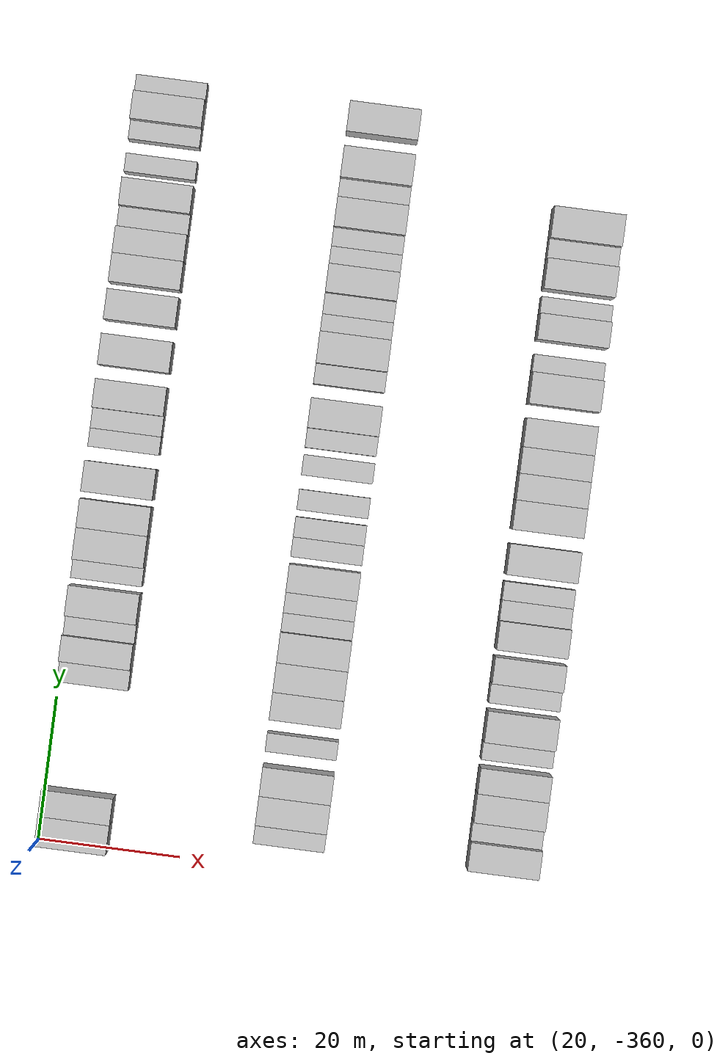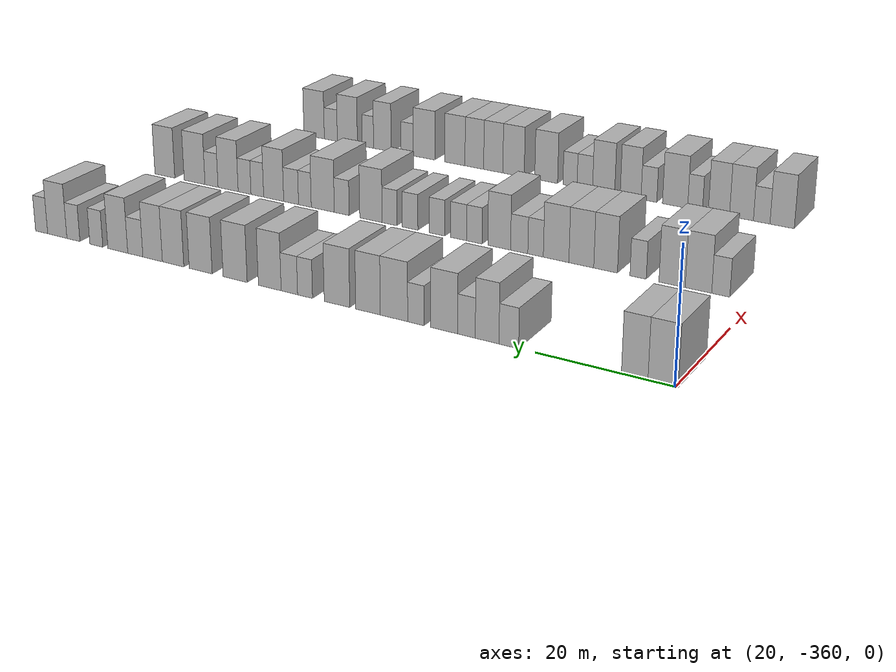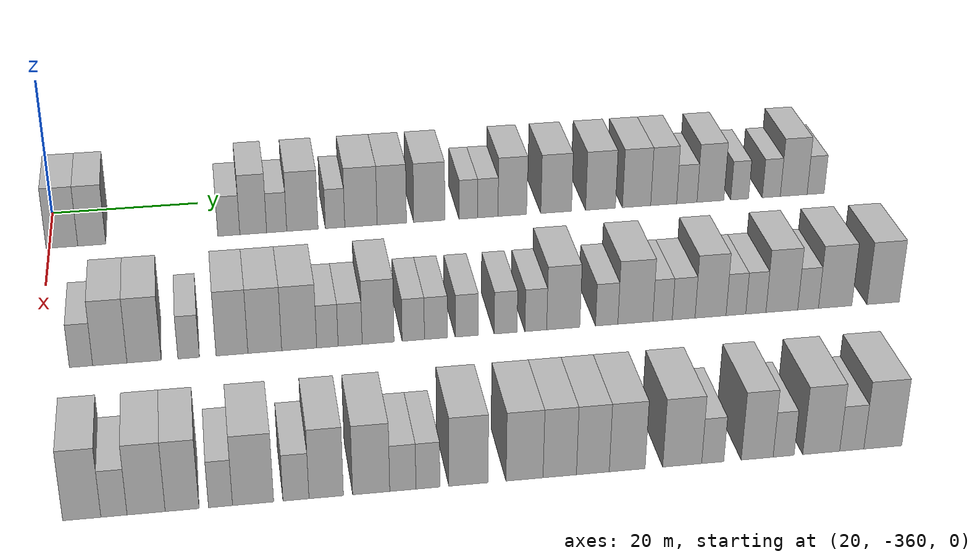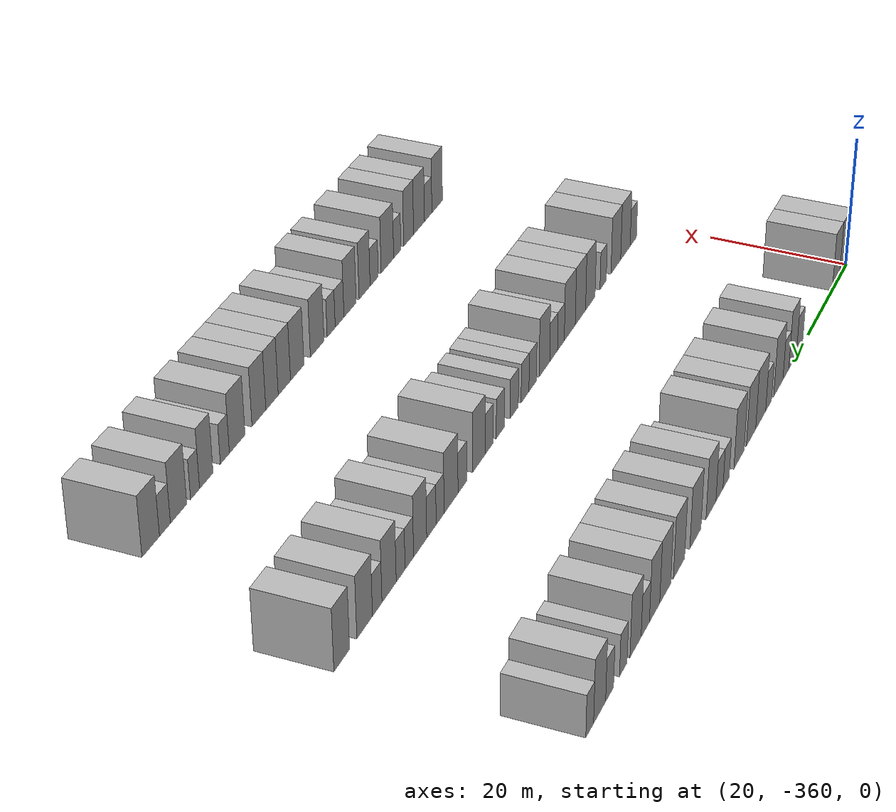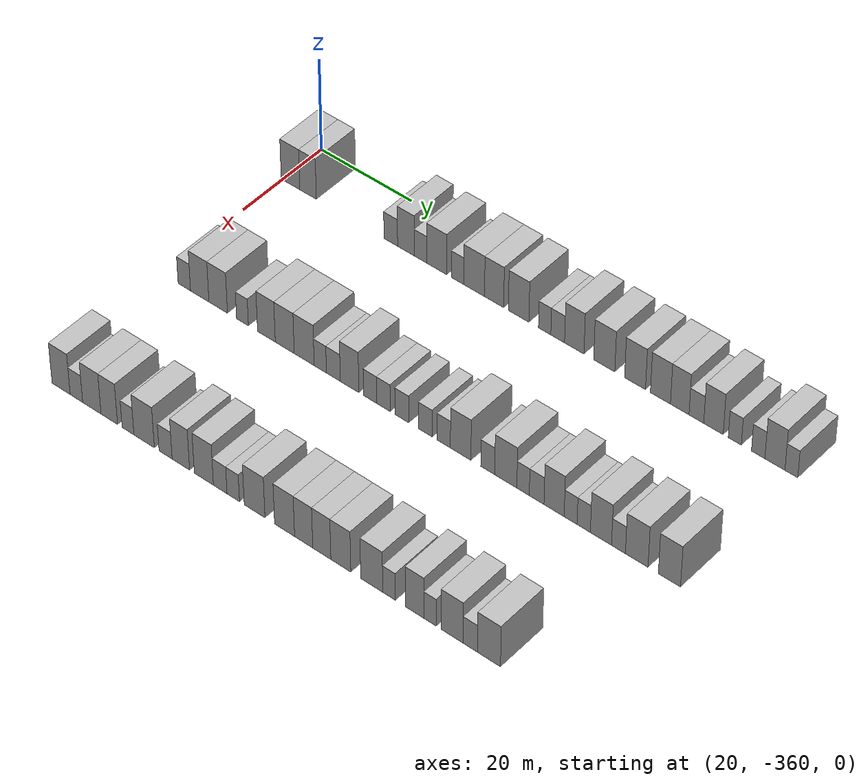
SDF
<sdf version="1.6">
 <world name="default">
  <model name="building_27">
   <static>1</static>
   <pose>25.0000 -358.2777 0 0.000000 0.000000 0.000000</pose>
   <link name="link">
    <pose>0 0 4.50 0 0 0</pose>
    <collision name="collision"><geometry><box><size>10.0000 4.1857 9.0000</size></box></geometry></collision>
    <visual name="visual">
     <cast_shadows>0</cast_shadows>
     <geometry><box><size>10.0000 4.1857 9.0000</size></box></geometry>
     <material>
      <script>
       <uri>model://HANNAS_wall/materials/scripts</uri>
       <uri>model://HANNAS_wall/materials/textures</uri>
       <name>vrc/HANNAS_wall</name>
      </script>
     </material>
    </visual>
   </link>
  </model>
  <model name="building_28">
   <static>1</static>
   <pose>25.0000 -354.3249 0 0.000000 0.000000 0.000000</pose>
   <link name="link">
    <pose>0 0 4.50 0 0 0</pose>
    <collision name="collision"><geometry><box><size>10.0000 3.7199 9.0000</size></box></geometry></collision>
    <visual name="visual">
     <cast_shadows>0</cast_shadows>
     <geometry><box><size>10.0000 3.7199 9.0000</size></box></geometry>
     <material>
      <script>
       <uri>model://HANNAS_wall/materials/scripts</uri>
       <uri>model://HANNAS_wall/materials/textures</uri>
       <name>vrc/HANNAS_wall</name>
      </script>
     </material>
    </visual>
   </link>
  </model>
  <model name="building_29">
   <static>1</static>
   <pose>25.0000 -336.0042 0 0.000000 0.000000 0.000000</pose>
   <link name="link">
    <pose>0 0 3.00 0 0 0</pose>
    <collision name="collision"><geometry><box><size>10.0000 2.9738 6.0000</size></box></geometry></collision>
    <visual name="visual">
     <cast_shadows>0</cast_shadows>
     <geometry><box><size>10.0000 2.9738 6.0000</size></box></geometry>
     <material>
      <script>
       <uri>model://HANNAS_wall/materials/scripts</uri>
       <uri>model://HANNAS_wall/materials/textures</uri>
       <name>vrc/HANNAS_wall</name>
      </script>
     </material>
    </visual>
   </link>
  </model>
  <model name="building_30">
   <static>1</static>
   <pose>25.0000 -332.7003 0 0.000000 0.000000 0.000000</pose>
   <link name="link">
    <pose>0 0 4.50 0 0 0</pose>
    <collision name="collision"><geometry><box><size>10.0000 3.6338 9.0000</size></box></geometry></collision>
    <visual name="visual">
     <cast_shadows>0</cast_shadows>
     <geometry><box><size>10.0000 3.6338 9.0000</size></box></geometry>
     <material>
      <script>
       <uri>model://HANNAS_wall/materials/scripts</uri>
       <uri>model://HANNAS_wall/materials/textures</uri>
       <name>vrc/HANNAS_wall</name>
      </script>
     </material>
    </visual>
   </link>
  </model>
  <model name="building_31">
   <static>1</static>
   <pose>25.0000 -329.5198 0 0.000000 0.000000 0.000000</pose>
   <link name="link">
    <pose>0 0 3.00 0 0 0</pose>
    <collision name="collision"><geometry><box><size>10.0000 2.7272 6.0000</size></box></geometry></collision>
    <visual name="visual">
     <cast_shadows>0</cast_shadows>
     <geometry><box><size>10.0000 2.7272 6.0000</size></box></geometry>
     <material>
      <script>
       <uri>model://HANNAS_wall/materials/scripts</uri>
       <uri>model://HANNAS_wall/materials/textures</uri>
       <name>vrc/HANNAS_wall</name>
      </script>
     </material>
    </visual>
   </link>
  </model>
  <model name="building_32">
   <static>1</static>
   <pose>25.0000 -326.0183 0 0.000000 0.000000 0.000000</pose>
   <link name="link">
    <pose>0 0 4.50 0 0 0</pose>
    <collision name="collision"><geometry><box><size>10.0000 4.2759 9.0000</size></box></geometry></collision>
    <visual name="visual">
     <cast_shadows>0</cast_shadows>
     <geometry><box><size>10.0000 4.2759 9.0000</size></box></geometry>
     <material>
      <script>
       <uri>model://HANNAS_wall/materials/scripts</uri>
       <uri>model://HANNAS_wall/materials/textures</uri>
       <name>vrc/HANNAS_wall</name>
      </script>
     </material>
    </visual>
   </link>
  </model>
  <model name="building_33">
   <static>1</static>
   <pose>25.0000 -321.5558 0 0.000000 0.000000 0.000000</pose>
   <link name="link">
    <pose>0 0 3.00 0 0 0</pose>
    <collision name="collision"><geometry><box><size>10.0000 2.6491 6.0000</size></box></geometry></collision>
    <visual name="visual">
     <cast_shadows>0</cast_shadows>
     <geometry><box><size>10.0000 2.6491 6.0000</size></box></geometry>
     <material>
      <script>
       <uri>model://HANNAS_wall/materials/scripts</uri>
       <uri>model://HANNAS_wall/materials/textures</uri>
       <name>vrc/HANNAS_wall</name>
      </script>
     </material>
    </visual>
   </link>
  </model>
  <model name="building_34">
   <static>1</static>
   <pose>25.0000 -318.0081 0 0.000000 0.000000 0.000000</pose>
   <link name="link">
    <pose>0 0 4.50 0 0 0</pose>
    <collision name="collision"><geometry><box><size>10.0000 4.4463 9.0000</size></box></geometry></collision>
    <visual name="visual">
     <cast_shadows>0</cast_shadows>
     <geometry><box><size>10.0000 4.4463 9.0000</size></box></geometry>
     <material>
      <script>
       <uri>model://HANNAS_wall/materials/scripts</uri>
       <uri>model://HANNAS_wall/materials/textures</uri>
       <name>vrc/HANNAS_wall</name>
      </script>
     </material>
    </visual>
   </link>
  </model>
  <model name="building_35">
   <static>1</static>
   <pose>25.0000 -313.7575 0 0.000000 0.000000 0.000000</pose>
   <link name="link">
    <pose>0 0 4.50 0 0 0</pose>
    <collision name="collision"><geometry><box><size>10.0000 4.0548 9.0000</size></box></geometry></collision>
    <visual name="visual">
     <cast_shadows>0</cast_shadows>
     <geometry><box><size>10.0000 4.0548 9.0000</size></box></geometry>
     <material>
      <script>
       <uri>model://HANNAS_wall/materials/scripts</uri>
       <uri>model://HANNAS_wall/materials/textures</uri>
       <name>vrc/HANNAS_wall</name>
      </script>
     </material>
    </visual>
   </link>
  </model>
  <model name="building_36">
   <static>1</static>
   <pose>25.0000 -308.5774 0 0.000000 0.000000 0.000000</pose>
   <link name="link">
    <pose>0 0 4.50 0 0 0</pose>
    <collision name="collision"><geometry><box><size>10.0000 4.3056 9.0000</size></box></geometry></collision>
    <visual name="visual">
     <cast_shadows>0</cast_shadows>
     <geometry><box><size>10.0000 4.3056 9.0000</size></box></geometry>
     <material>
      <script>
       <uri>model://HANNAS_wall/materials/scripts</uri>
       <uri>model://HANNAS_wall/materials/textures</uri>
       <name>vrc/HANNAS_wall</name>
      </script>
     </material>
    </visual>
   </link>
  </model>
  <model name="building_37">
   <static>1</static>
   <pose>25.0000 -303.1384 0 0.000000 0.000000 0.000000</pose>
   <link name="link">
    <pose>0 0 3.00 0 0 0</pose>
    <collision name="collision"><geometry><box><size>10.0000 2.5723 6.0000</size></box></geometry></collision>
    <visual name="visual">
     <cast_shadows>0</cast_shadows>
     <geometry><box><size>10.0000 2.5723 6.0000</size></box></geometry>
     <material>
      <script>
       <uri>model://HANNAS_wall/materials/scripts</uri>
       <uri>model://HANNAS_wall/materials/textures</uri>
       <name>vrc/HANNAS_wall</name>
      </script>
     </material>
    </visual>
   </link>
  </model>
  <model name="building_38">
   <static>1</static>
   <pose>25.0000 -300.4234 0 0.000000 0.000000 0.000000</pose>
   <link name="link">
    <pose>0 0 3.00 0 0 0</pose>
    <collision name="collision"><geometry><box><size>10.0000 2.8578 6.0000</size></box></geometry></collision>
    <visual name="visual">
     <cast_shadows>0</cast_shadows>
     <geometry><box><size>10.0000 2.8578 6.0000</size></box></geometry>
     <material>
      <script>
       <uri>model://HANNAS_wall/materials/scripts</uri>
       <uri>model://HANNAS_wall/materials/textures</uri>
       <name>vrc/HANNAS_wall</name>
      </script>
     </material>
    </visual>
   </link>
  </model>
  <model name="building_39">
   <static>1</static>
   <pose>25.0000 -296.9860 0 0.000000 0.000000 0.000000</pose>
   <link name="link">
    <pose>0 0 4.50 0 0 0</pose>
    <collision name="collision"><geometry><box><size>10.0000 4.0170 9.0000</size></box></geometry></collision>
    <visual name="visual">
     <cast_shadows>0</cast_shadows>
     <geometry><box><size>10.0000 4.0170 9.0000</size></box></geometry>
     <material>
      <script>
       <uri>model://HANNAS_wall/materials/scripts</uri>
       <uri>model://HANNAS_wall/materials/textures</uri>
       <name>vrc/HANNAS_wall</name>
      </script>
     </material>
    </visual>
   </link>
  </model>
  <model name="building_40">
   <static>1</static>
   <pose>25.0000 -290.8100 0 0.000000 0.000000 0.000000</pose>
   <link name="link">
    <pose>0 0 4.50 0 0 0</pose>
    <collision name="collision"><geometry><box><size>10.0000 4.3349 9.0000</size></box></geometry></collision>
    <visual name="visual">
     <cast_shadows>0</cast_shadows>
     <geometry><box><size>10.0000 4.3349 9.0000</size></box></geometry>
     <material>
      <script>
       <uri>model://HANNAS_wall/materials/scripts</uri>
       <uri>model://HANNAS_wall/materials/textures</uri>
       <name>vrc/HANNAS_wall</name>
      </script>
     </material>
    </visual>
   </link>
  </model>
  <model name="building_41">
   <static>1</static>
   <pose>25.0000 -284.5205 0 0.000000 0.000000 0.000000</pose>
   <link name="link">
    <pose>0 0 4.50 0 0 0</pose>
    <collision name="collision"><geometry><box><size>10.0000 4.2441 9.0000</size></box></geometry></collision>
    <visual name="visual">
     <cast_shadows>0</cast_shadows>
     <geometry><box><size>10.0000 4.2441 9.0000</size></box></geometry>
     <material>
      <script>
       <uri>model://HANNAS_wall/materials/scripts</uri>
       <uri>model://HANNAS_wall/materials/textures</uri>
       <name>vrc/HANNAS_wall</name>
      </script>
     </material>
    </visual>
   </link>
  </model>
  <model name="building_42">
   <static>1</static>
   <pose>25.0000 -279.3800 0 0.000000 0.000000 0.000000</pose>
   <link name="link">
    <pose>0 0 4.50 0 0 0</pose>
    <collision name="collision"><geometry><box><size>10.0000 4.0371 9.0000</size></box></geometry></collision>
    <visual name="visual">
     <cast_shadows>0</cast_shadows>
     <geometry><box><size>10.0000 4.0371 9.0000</size></box></geometry>
     <material>
      <script>
       <uri>model://HANNAS_wall/materials/scripts</uri>
       <uri>model://HANNAS_wall/materials/textures</uri>
       <name>vrc/HANNAS_wall</name>
      </script>
     </material>
    </visual>
   </link>
  </model>
  <model name="building_43">
   <static>1</static>
   <pose>25.0000 -275.5001 0 0.000000 0.000000 0.000000</pose>
   <link name="link">
    <pose>0 0 4.50 0 0 0</pose>
    <collision name="collision"><geometry><box><size>10.0000 3.7226 9.0000</size></box></geometry></collision>
    <visual name="visual">
     <cast_shadows>0</cast_shadows>
     <geometry><box><size>10.0000 3.7226 9.0000</size></box></geometry>
     <material>
      <script>
       <uri>model://HANNAS_wall/materials/scripts</uri>
       <uri>model://HANNAS_wall/materials/textures</uri>
       <name>vrc/HANNAS_wall</name>
      </script>
     </material>
    </visual>
   </link>
  </model>
  <model name="building_44">
   <static>1</static>
   <pose>25.0000 -272.1725 0 0.000000 0.000000 0.000000</pose>
   <link name="link">
    <pose>0 0 3.00 0 0 0</pose>
    <collision name="collision"><geometry><box><size>10.0000 2.9327 6.0000</size></box></geometry></collision>
    <visual name="visual">
     <cast_shadows>0</cast_shadows>
     <geometry><box><size>10.0000 2.9327 6.0000</size></box></geometry>
     <material>
      <script>
       <uri>model://HANNAS_wall/materials/scripts</uri>
       <uri>model://HANNAS_wall/materials/textures</uri>
       <name>vrc/HANNAS_wall</name>
      </script>
     </material>
    </visual>
   </link>
  </model>
  <model name="building_45">
   <static>1</static>
   <pose>25.0000 -268.7681 0 0.000000 0.000000 0.000000</pose>
   <link name="link">
    <pose>0 0 4.50 0 0 0</pose>
    <collision name="collision"><geometry><box><size>10.0000 3.8760 9.0000</size></box></geometry></collision>
    <visual name="visual">
     <cast_shadows>0</cast_shadows>
     <geometry><box><size>10.0000 3.8760 9.0000</size></box></geometry>
     <material>
      <script>
       <uri>model://HANNAS_wall/materials/scripts</uri>
       <uri>model://HANNAS_wall/materials/textures</uri>
       <name>vrc/HANNAS_wall</name>
      </script>
     </material>
    </visual>
   </link>
  </model>
  <model name="building_46">
   <static>1</static>
   <pose>25.0000 -264.5430 0 0.000000 0.000000 0.000000</pose>
   <link name="link">
    <pose>0 0 3.00 0 0 0</pose>
    <collision name="collision"><geometry><box><size>10.0000 2.5741 6.0000</size></box></geometry></collision>
    <visual name="visual">
     <cast_shadows>0</cast_shadows>
     <geometry><box><size>10.0000 2.5741 6.0000</size></box></geometry>
     <material>
      <script>
       <uri>model://HANNAS_wall/materials/scripts</uri>
       <uri>model://HANNAS_wall/materials/textures</uri>
       <name>vrc/HANNAS_wall</name>
      </script>
     </material>
    </visual>
   </link>
  </model>
  <model name="building_47">
   <static>1</static>
   <pose>25.0000 -259.9437 0 0.000000 0.000000 0.000000</pose>
   <link name="link">
    <pose>0 0 3.00 0 0 0</pose>
    <collision name="collision"><geometry><box><size>10.0000 2.6247 6.0000</size></box></geometry></collision>
    <visual name="visual">
     <cast_shadows>0</cast_shadows>
     <geometry><box><size>10.0000 2.6247 6.0000</size></box></geometry>
     <material>
      <script>
       <uri>model://HANNAS_wall/materials/scripts</uri>
       <uri>model://HANNAS_wall/materials/textures</uri>
       <name>vrc/HANNAS_wall</name>
      </script>
     </material>
    </visual>
   </link>
  </model>
  <model name="building_48">
   <static>1</static>
   <pose>25.0000 -256.6727 0 0.000000 0.000000 0.000000</pose>
   <link name="link">
    <pose>0 0 4.50 0 0 0</pose>
    <collision name="collision"><geometry><box><size>10.0000 3.9173 9.0000</size></box></geometry></collision>
    <visual name="visual">
     <cast_shadows>0</cast_shadows>
     <geometry><box><size>10.0000 3.9173 9.0000</size></box></geometry>
     <material>
      <script>
       <uri>model://HANNAS_wall/materials/scripts</uri>
       <uri>model://HANNAS_wall/materials/textures</uri>
       <name>vrc/HANNAS_wall</name>
      </script>
     </material>
    </visual>
   </link>
  </model>
  <model name="building_49">
   <static>1</static>
   <pose>25.0000 -253.4671 0 0.000000 0.000000 0.000000</pose>
   <link name="link">
    <pose>0 0 3.00 0 0 0</pose>
    <collision name="collision"><geometry><box><size>10.0000 2.4939 6.0000</size></box></geometry></collision>
    <visual name="visual">
     <cast_shadows>0</cast_shadows>
     <geometry><box><size>10.0000 2.4939 6.0000</size></box></geometry>
     <material>
      <script>
       <uri>model://HANNAS_wall/materials/scripts</uri>
       <uri>model://HANNAS_wall/materials/textures</uri>
       <name>vrc/HANNAS_wall</name>
      </script>
     </material>
    </visual>
   </link>
  </model>
  <model name="building_251">
   <static>1</static>
   <pose>55.0000 -354.8874 0 0.000000 0.000000 0.000000</pose>
   <link name="link">
    <pose>0 0 3.00 0 0 0</pose>
    <collision name="collision"><geometry><box><size>10.0000 2.7568 6.0000</size></box></geometry></collision>
    <visual name="visual">
     <cast_shadows>0</cast_shadows>
     <geometry><box><size>10.0000 2.7568 6.0000</size></box></geometry>
     <material>
      <script>
       <uri>model://HANNAS_wall/materials/scripts</uri>
       <uri>model://HANNAS_wall/materials/textures</uri>
       <name>vrc/HANNAS_wall</name>
      </script>
     </material>
    </visual>
   </link>
  </model>
  <model name="building_252">
   <static>1</static>
   <pose>55.0000 -351.4671 0 0.000000 0.000000 0.000000</pose>
   <link name="link">
    <pose>0 0 4.50 0 0 0</pose>
    <collision name="collision"><geometry><box><size>10.0000 4.0838 9.0000</size></box></geometry></collision>
    <visual name="visual">
     <cast_shadows>0</cast_shadows>
     <geometry><box><size>10.0000 4.0838 9.0000</size></box></geometry>
     <material>
      <script>
       <uri>model://HANNAS_wall/materials/scripts</uri>
       <uri>model://HANNAS_wall/materials/textures</uri>
       <name>vrc/HANNAS_wall</name>
      </script>
     </material>
    </visual>
   </link>
  </model>
  <model name="building_253">
   <static>1</static>
   <pose>55.0000 -347.3779 0 0.000000 0.000000 0.000000</pose>
   <link name="link">
    <pose>0 0 4.50 0 0 0</pose>
    <collision name="collision"><geometry><box><size>10.0000 4.0946 9.0000</size></box></geometry></collision>
    <visual name="visual">
     <cast_shadows>0</cast_shadows>
     <geometry><box><size>10.0000 4.0946 9.0000</size></box></geometry>
     <material>
      <script>
       <uri>model://HANNAS_wall/materials/scripts</uri>
       <uri>model://HANNAS_wall/materials/textures</uri>
       <name>vrc/HANNAS_wall</name>
      </script>
     </material>
    </visual>
   </link>
  </model>
  <model name="building_254">
   <static>1</static>
   <pose>55.0000 -342.0320 0 0.000000 0.000000 0.000000</pose>
   <link name="link">
    <pose>0 0 3.00 0 0 0</pose>
    <collision name="collision"><geometry><box><size>10.0000 2.5973 6.0000</size></box></geometry></collision>
    <visual name="visual">
     <cast_shadows>0</cast_shadows>
     <geometry><box><size>10.0000 2.5973 6.0000</size></box></geometry>
     <material>
      <script>
       <uri>model://HANNAS_wall/materials/scripts</uri>
       <uri>model://HANNAS_wall/materials/textures</uri>
       <name>vrc/HANNAS_wall</name>
      </script>
     </material>
    </visual>
   </link>
  </model>
  <model name="building_255">
   <static>1</static>
   <pose>55.0000 -336.8066 0 0.000000 0.000000 0.000000</pose>
   <link name="link">
    <pose>0 0 4.50 0 0 0</pose>
    <collision name="collision"><geometry><box><size>10.0000 3.8536 9.0000</size></box></geometry></collision>
    <visual name="visual">
     <cast_shadows>0</cast_shadows>
     <geometry><box><size>10.0000 3.8536 9.0000</size></box></geometry>
     <material>
      <script>
       <uri>model://HANNAS_wall/materials/scripts</uri>
       <uri>model://HANNAS_wall/materials/textures</uri>
       <name>vrc/HANNAS_wall</name>
      </script>
     </material>
    </visual>
   </link>
  </model>
  <model name="building_256">
   <static>1</static>
   <pose>55.0000 -332.8272 0 0.000000 0.000000 0.000000</pose>
   <link name="link">
    <pose>0 0 4.50 0 0 0</pose>
    <collision name="collision"><geometry><box><size>10.0000 4.1051 9.0000</size></box></geometry></collision>
    <visual name="visual">
     <cast_shadows>0</cast_shadows>
     <geometry><box><size>10.0000 4.1051 9.0000</size></box></geometry>
     <material>
      <script>
       <uri>model://HANNAS_wall/materials/scripts</uri>
       <uri>model://HANNAS_wall/materials/textures</uri>
       <name>vrc/HANNAS_wall</name>
      </script>
     </material>
    </visual>
   </link>
  </model>
  <model name="building_257">
   <static>1</static>
   <pose>55.0000 -328.6361 0 0.000000 0.000000 0.000000</pose>
   <link name="link">
    <pose>0 0 4.50 0 0 0</pose>
    <collision name="collision"><geometry><box><size>10.0000 4.2773 9.0000</size></box></geometry></collision>
    <visual name="visual">
     <cast_shadows>0</cast_shadows>
     <geometry><box><size>10.0000 4.2773 9.0000</size></box></geometry>
     <material>
      <script>
       <uri>model://HANNAS_wall/materials/scripts</uri>
       <uri>model://HANNAS_wall/materials/textures</uri>
       <name>vrc/HANNAS_wall</name>
      </script>
     </material>
    </visual>
   </link>
  </model>
  <model name="building_258">
   <static>1</static>
   <pose>55.0000 -325.1858 0 0.000000 0.000000 0.000000</pose>
   <link name="link">
    <pose>0 0 3.00 0 0 0</pose>
    <collision name="collision"><geometry><box><size>10.0000 2.6234 6.0000</size></box></geometry></collision>
    <visual name="visual">
     <cast_shadows>0</cast_shadows>
     <geometry><box><size>10.0000 2.6234 6.0000</size></box></geometry>
     <material>
      <script>
       <uri>model://HANNAS_wall/materials/scripts</uri>
       <uri>model://HANNAS_wall/materials/textures</uri>
       <name>vrc/HANNAS_wall</name>
      </script>
     </material>
    </visual>
   </link>
  </model>
  <model name="building_259">
   <static>1</static>
   <pose>55.0000 -322.3959 0 0.000000 0.000000 0.000000</pose>
   <link name="link">
    <pose>0 0 3.00 0 0 0</pose>
    <collision name="collision"><geometry><box><size>10.0000 2.9563 6.0000</size></box></geometry></collision>
    <visual name="visual">
     <cast_shadows>0</cast_shadows>
     <geometry><box><size>10.0000 2.9563 6.0000</size></box></geometry>
     <material>
      <script>
       <uri>model://HANNAS_wall/materials/scripts</uri>
       <uri>model://HANNAS_wall/materials/textures</uri>
       <name>vrc/HANNAS_wall</name>
      </script>
     </material>
    </visual>
   </link>
  </model>
  <model name="building_260">
   <static>1</static>
   <pose>55.0000 -318.9514 0 0.000000 0.000000 0.000000</pose>
   <link name="link">
    <pose>0 0 4.50 0 0 0</pose>
    <collision name="collision"><geometry><box><size>10.0000 3.9326 9.0000</size></box></geometry></collision>
    <visual name="visual">
     <cast_shadows>0</cast_shadows>
     <geometry><box><size>10.0000 3.9326 9.0000</size></box></geometry>
     <material>
      <script>
       <uri>model://HANNAS_wall/materials/scripts</uri>
       <uri>model://HANNAS_wall/materials/textures</uri>
       <name>vrc/HANNAS_wall</name>
      </script>
     </material>
    </visual>
   </link>
  </model>
  <model name="building_261">
   <static>1</static>
   <pose>55.0000 -314.6043 0 0.000000 0.000000 0.000000</pose>
   <link name="link">
    <pose>0 0 3.00 0 0 0</pose>
    <collision name="collision"><geometry><box><size>10.0000 2.7617 6.0000</size></box></geometry></collision>
    <visual name="visual">
     <cast_shadows>0</cast_shadows>
     <geometry><box><size>10.0000 2.7617 6.0000</size></box></geometry>
     <material>
      <script>
       <uri>model://HANNAS_wall/materials/scripts</uri>
       <uri>model://HANNAS_wall/materials/textures</uri>
       <name>vrc/HANNAS_wall</name>
      </script>
     </material>
    </visual>
   </link>
  </model>
  <model name="building_262">
   <static>1</static>
   <pose>55.0000 -311.8042 0 0.000000 0.000000 0.000000</pose>
   <link name="link">
    <pose>0 0 3.00 0 0 0</pose>
    <collision name="collision"><geometry><box><size>10.0000 2.8384 6.0000</size></box></geometry></collision>
    <visual name="visual">
     <cast_shadows>0</cast_shadows>
     <geometry><box><size>10.0000 2.8384 6.0000</size></box></geometry>
     <material>
      <script>
       <uri>model://HANNAS_wall/materials/scripts</uri>
       <uri>model://HANNAS_wall/materials/textures</uri>
       <name>vrc/HANNAS_wall</name>
      </script>
     </material>
    </visual>
   </link>
  </model>
  <model name="building_263">
   <static>1</static>
   <pose>55.0000 -307.9484 0 0.000000 0.000000 0.000000</pose>
   <link name="link">
    <pose>0 0 3.00 0 0 0</pose>
    <collision name="collision"><geometry><box><size>10.0000 2.8733 6.0000</size></box></geometry></collision>
    <visual name="visual">
     <cast_shadows>0</cast_shadows>
     <geometry><box><size>10.0000 2.8733 6.0000</size></box></geometry>
     <material>
      <script>
       <uri>model://HANNAS_wall/materials/scripts</uri>
       <uri>model://HANNAS_wall/materials/textures</uri>
       <name>vrc/HANNAS_wall</name>
      </script>
     </material>
    </visual>
   </link>
  </model>
  <model name="building_264">
   <static>1</static>
   <pose>55.0000 -303.0801 0 0.000000 0.000000 0.000000</pose>
   <link name="link">
    <pose>0 0 3.00 0 0 0</pose>
    <collision name="collision"><geometry><box><size>10.0000 2.8633 6.0000</size></box></geometry></collision>
    <visual name="visual">
     <cast_shadows>0</cast_shadows>
     <geometry><box><size>10.0000 2.8633 6.0000</size></box></geometry>
     <material>
      <script>
       <uri>model://HANNAS_wall/materials/scripts</uri>
       <uri>model://HANNAS_wall/materials/textures</uri>
       <name>vrc/HANNAS_wall</name>
      </script>
     </material>
    </visual>
   </link>
  </model>
  <model name="building_265">
   <static>1</static>
   <pose>55.0000 -299.2767 0 0.000000 0.000000 0.000000</pose>
   <link name="link">
    <pose>0 0 3.00 0 0 0</pose>
    <collision name="collision"><geometry><box><size>10.0000 2.7434 6.0000</size></box></geometry></collision>
    <visual name="visual">
     <cast_shadows>0</cast_shadows>
     <geometry><box><size>10.0000 2.7434 6.0000</size></box></geometry>
     <material>
      <script>
       <uri>model://HANNAS_wall/materials/scripts</uri>
       <uri>model://HANNAS_wall/materials/textures</uri>
       <name>vrc/HANNAS_wall</name>
      </script>
     </material>
    </visual>
   </link>
  </model>
  <model name="building_266">
   <static>1</static>
   <pose>55.0000 -295.8049 0 0.000000 0.000000 0.000000</pose>
   <link name="link">
    <pose>0 0 4.50 0 0 0</pose>
    <collision name="collision"><geometry><box><size>10.0000 4.2003 9.0000</size></box></geometry></collision>
    <visual name="visual">
     <cast_shadows>0</cast_shadows>
     <geometry><box><size>10.0000 4.2003 9.0000</size></box></geometry>
     <material>
      <script>
       <uri>model://HANNAS_wall/materials/scripts</uri>
       <uri>model://HANNAS_wall/materials/textures</uri>
       <name>vrc/HANNAS_wall</name>
      </script>
     </material>
    </visual>
   </link>
  </model>
  <model name="building_267">
   <static>1</static>
   <pose>55.0000 -290.2806 0 0.000000 0.000000 0.000000</pose>
   <link name="link">
    <pose>0 0 3.00 0 0 0</pose>
    <collision name="collision"><geometry><box><size>10.0000 2.8481 6.0000</size></box></geometry></collision>
    <visual name="visual">
     <cast_shadows>0</cast_shadows>
     <geometry><box><size>10.0000 2.8481 6.0000</size></box></geometry>
     <material>
      <script>
       <uri>model://HANNAS_wall/materials/scripts</uri>
       <uri>model://HANNAS_wall/materials/textures</uri>
       <name>vrc/HANNAS_wall</name>
      </script>
     </material>
    </visual>
   </link>
  </model>
  <model name="building_268">
   <static>1</static>
   <pose>55.0000 -286.6224 0 0.000000 0.000000 0.000000</pose>
   <link name="link">
    <pose>0 0 4.50 0 0 0</pose>
    <collision name="collision"><geometry><box><size>10.0000 4.4685 9.0000</size></box></geometry></collision>
    <visual name="visual">
     <cast_shadows>0</cast_shadows>
     <geometry><box><size>10.0000 4.4685 9.0000</size></box></geometry>
     <material>
      <script>
       <uri>model://HANNAS_wall/materials/scripts</uri>
       <uri>model://HANNAS_wall/materials/textures</uri>
       <name>vrc/HANNAS_wall</name>
      </script>
     </material>
    </visual>
   </link>
  </model>
  <model name="building_269">
   <static>1</static>
   <pose>55.0000 -283.1375 0 0.000000 0.000000 0.000000</pose>
   <link name="link">
    <pose>0 0 3.00 0 0 0</pose>
    <collision name="collision"><geometry><box><size>10.0000 2.5014 6.0000</size></box></geometry></collision>
    <visual name="visual">
     <cast_shadows>0</cast_shadows>
     <geometry><box><size>10.0000 2.5014 6.0000</size></box></geometry>
     <material>
      <script>
       <uri>model://HANNAS_wall/materials/scripts</uri>
       <uri>model://HANNAS_wall/materials/textures</uri>
       <name>vrc/HANNAS_wall</name>
      </script>
     </material>
    </visual>
   </link>
  </model>
  <model name="building_270">
   <static>1</static>
   <pose>55.0000 -280.4166 0 0.000000 0.000000 0.000000</pose>
   <link name="link">
    <pose>0 0 3.00 0 0 0</pose>
    <collision name="collision"><geometry><box><size>10.0000 2.9404 6.0000</size></box></geometry></collision>
    <visual name="visual">
     <cast_shadows>0</cast_shadows>
     <geometry><box><size>10.0000 2.9404 6.0000</size></box></geometry>
     <material>
      <script>
       <uri>model://HANNAS_wall/materials/scripts</uri>
       <uri>model://HANNAS_wall/materials/textures</uri>
       <name>vrc/HANNAS_wall</name>
      </script>
     </material>
    </visual>
   </link>
  </model>
  <model name="building_271">
   <static>1</static>
   <pose>55.0000 -276.9408 0 0.000000 0.000000 0.000000</pose>
   <link name="link">
    <pose>0 0 4.50 0 0 0</pose>
    <collision name="collision"><geometry><box><size>10.0000 4.0111 9.0000</size></box></geometry></collision>
    <visual name="visual">
     <cast_shadows>0</cast_shadows>
     <geometry><box><size>10.0000 4.0111 9.0000</size></box></geometry>
     <material>
      <script>
       <uri>model://HANNAS_wall/materials/scripts</uri>
       <uri>model://HANNAS_wall/materials/textures</uri>
       <name>vrc/HANNAS_wall</name>
      </script>
     </material>
    </visual>
   </link>
  </model>
  <model name="building_272">
   <static>1</static>
   <pose>55.0000 -273.6566 0 0.000000 0.000000 0.000000</pose>
   <link name="link">
    <pose>0 0 3.00 0 0 0</pose>
    <collision name="collision"><geometry><box><size>10.0000 2.5572 6.0000</size></box></geometry></collision>
    <visual name="visual">
     <cast_shadows>0</cast_shadows>
     <geometry><box><size>10.0000 2.5572 6.0000</size></box></geometry>
     <material>
      <script>
       <uri>model://HANNAS_wall/materials/scripts</uri>
       <uri>model://HANNAS_wall/materials/textures</uri>
       <name>vrc/HANNAS_wall</name>
      </script>
     </material>
    </visual>
   </link>
  </model>
  <model name="building_273">
   <static>1</static>
   <pose>55.0000 -271.0655 0 0.000000 0.000000 0.000000</pose>
   <link name="link">
    <pose>0 0 3.00 0 0 0</pose>
    <collision name="collision"><geometry><box><size>10.0000 2.6250 6.0000</size></box></geometry></collision>
    <visual name="visual">
     <cast_shadows>0</cast_shadows>
     <geometry><box><size>10.0000 2.6250 6.0000</size></box></geometry>
     <material>
      <script>
       <uri>model://HANNAS_wall/materials/scripts</uri>
       <uri>model://HANNAS_wall/materials/textures</uri>
       <name>vrc/HANNAS_wall</name>
      </script>
     </material>
    </visual>
   </link>
  </model>
  <model name="building_274">
   <static>1</static>
   <pose>55.0000 -267.6734 0 0.000000 0.000000 0.000000</pose>
   <link name="link">
    <pose>0 0 4.50 0 0 0</pose>
    <collision name="collision"><geometry><box><size>10.0000 4.1591 9.0000</size></box></geometry></collision>
    <visual name="visual">
     <cast_shadows>0</cast_shadows>
     <geometry><box><size>10.0000 4.1591 9.0000</size></box></geometry>
     <material>
      <script>
       <uri>model://HANNAS_wall/materials/scripts</uri>
       <uri>model://HANNAS_wall/materials/textures</uri>
       <name>vrc/HANNAS_wall</name>
      </script>
     </material>
    </visual>
   </link>
  </model>
  <model name="building_275">
   <static>1</static>
   <pose>55.0000 -264.2354 0 0.000000 0.000000 0.000000</pose>
   <link name="link">
    <pose>0 0 3.00 0 0 0</pose>
    <collision name="collision"><geometry><box><size>10.0000 2.7169 6.0000</size></box></geometry></collision>
    <visual name="visual">
     <cast_shadows>0</cast_shadows>
     <geometry><box><size>10.0000 2.7169 6.0000</size></box></geometry>
     <material>
      <script>
       <uri>model://HANNAS_wall/materials/scripts</uri>
       <uri>model://HANNAS_wall/materials/textures</uri>
       <name>vrc/HANNAS_wall</name>
      </script>
     </material>
    </visual>
   </link>
  </model>
  <model name="building_276">
   <static>1</static>
   <pose>55.0000 -260.6779 0 0.000000 0.000000 0.000000</pose>
   <link name="link">
    <pose>0 0 4.50 0 0 0</pose>
    <collision name="collision"><geometry><box><size>10.0000 4.3982 9.0000</size></box></geometry></collision>
    <visual name="visual">
     <cast_shadows>0</cast_shadows>
     <geometry><box><size>10.0000 4.3982 9.0000</size></box></geometry>
     <material>
      <script>
       <uri>model://HANNAS_wall/materials/scripts</uri>
       <uri>model://HANNAS_wall/materials/textures</uri>
       <name>vrc/HANNAS_wall</name>
      </script>
     </material>
    </visual>
   </link>
  </model>
  <model name="building_277">
   <static>1</static>
   <pose>55.0000 -254.3433 0 0.000000 0.000000 0.000000</pose>
   <link name="link">
    <pose>0 0 4.50 0 0 0</pose>
    <collision name="collision"><geometry><box><size>10.0000 4.2711 9.0000</size></box></geometry></collision>
    <visual name="visual">
     <cast_shadows>0</cast_shadows>
     <geometry><box><size>10.0000 4.2711 9.0000</size></box></geometry>
     <material>
      <script>
       <uri>model://HANNAS_wall/materials/scripts</uri>
       <uri>model://HANNAS_wall/materials/textures</uri>
       <name>vrc/HANNAS_wall</name>
      </script>
     </material>
    </visual>
   </link>
  </model>
  <model name="building_482">
   <static>1</static>
   <pose>85.0000 -353.9382 0 0.000000 0.000000 0.000000</pose>
   <link name="link">
    <pose>0 0 4.50 0 0 0</pose>
    <collision name="collision"><geometry><box><size>10.0000 4.0041 9.0000</size></box></geometry></collision>
    <visual name="visual">
     <cast_shadows>0</cast_shadows>
     <geometry><box><size>10.0000 4.0041 9.0000</size></box></geometry>
     <material>
      <script>
       <uri>model://HANNAS_wall/materials/scripts</uri>
       <uri>model://HANNAS_wall/materials/textures</uri>
       <name>vrc/HANNAS_wall</name>
      </script>
     </material>
    </visual>
   </link>
  </model>
  <model name="building_483">
   <static>1</static>
   <pose>85.0000 -350.5603 0 0.000000 0.000000 0.000000</pose>
   <link name="link">
    <pose>0 0 3.00 0 0 0</pose>
    <collision name="collision"><geometry><box><size>10.0000 2.7517 6.0000</size></box></geometry></collision>
    <visual name="visual">
     <cast_shadows>0</cast_shadows>
     <geometry><box><size>10.0000 2.7517 6.0000</size></box></geometry>
     <material>
      <script>
       <uri>model://HANNAS_wall/materials/scripts</uri>
       <uri>model://HANNAS_wall/materials/textures</uri>
       <name>vrc/HANNAS_wall</name>
      </script>
     </material>
    </visual>
   </link>
  </model>
  <model name="building_484">
   <static>1</static>
   <pose>85.0000 -347.1685 0 0.000000 0.000000 0.000000</pose>
   <link name="link">
    <pose>0 0 4.50 0 0 0</pose>
    <collision name="collision"><geometry><box><size>10.0000 4.0319 9.0000</size></box></geometry></collision>
    <visual name="visual">
     <cast_shadows>0</cast_shadows>
     <geometry><box><size>10.0000 4.0319 9.0000</size></box></geometry>
     <material>
      <script>
       <uri>model://HANNAS_wall/materials/scripts</uri>
       <uri>model://HANNAS_wall/materials/textures</uri>
       <name>vrc/HANNAS_wall</name>
      </script>
     </material>
    </visual>
   </link>
  </model>
  <model name="building_485">
   <static>1</static>
   <pose>85.0000 -343.3510 0 0.000000 0.000000 0.000000</pose>
   <link name="link">
    <pose>0 0 4.50 0 0 0</pose>
    <collision name="collision"><geometry><box><size>10.0000 3.6032 9.0000</size></box></geometry></collision>
    <visual name="visual">
     <cast_shadows>0</cast_shadows>
     <geometry><box><size>10.0000 3.6032 9.0000</size></box></geometry>
     <material>
      <script>
       <uri>model://HANNAS_wall/materials/scripts</uri>
       <uri>model://HANNAS_wall/materials/textures</uri>
       <name>vrc/HANNAS_wall</name>
      </script>
     </material>
    </visual>
   </link>
  </model>
  <model name="building_486">
   <static>1</static>
   <pose>85.0000 -339.2658 0 0.000000 0.000000 0.000000</pose>
   <link name="link">
    <pose>0 0 3.00 0 0 0</pose>
    <collision name="collision"><geometry><box><size>10.0000 2.5672 6.0000</size></box></geometry></collision>
    <visual name="visual">
     <cast_shadows>0</cast_shadows>
     <geometry><box><size>10.0000 2.5672 6.0000</size></box></geometry>
     <material>
      <script>
       <uri>model://HANNAS_wall/materials/scripts</uri>
       <uri>model://HANNAS_wall/materials/textures</uri>
       <name>vrc/HANNAS_wall</name>
      </script>
     </material>
    </visual>
   </link>
  </model>
  <model name="building_487">
   <static>1</static>
   <pose>85.0000 -335.7774 0 0.000000 0.000000 0.000000</pose>
   <link name="link">
    <pose>0 0 4.50 0 0 0</pose>
    <collision name="collision"><geometry><box><size>10.0000 4.4096 9.0000</size></box></geometry></collision>
    <visual name="visual">
     <cast_shadows>0</cast_shadows>
     <geometry><box><size>10.0000 4.4096 9.0000</size></box></geometry>
     <material>
      <script>
       <uri>model://HANNAS_wall/materials/scripts</uri>
       <uri>model://HANNAS_wall/materials/textures</uri>
       <name>vrc/HANNAS_wall</name>
      </script>
     </material>
    </visual>
   </link>
  </model>
  <model name="building_488">
   <static>1</static>
   <pose>85.0000 -331.1698 0 0.000000 0.000000 0.000000</pose>
   <link name="link">
    <pose>0 0 3.00 0 0 0</pose>
    <collision name="collision"><geometry><box><size>10.0000 2.8057 6.0000</size></box></geometry></collision>
    <visual name="visual">
     <cast_shadows>0</cast_shadows>
     <geometry><box><size>10.0000 2.8057 6.0000</size></box></geometry>
     <material>
      <script>
       <uri>model://HANNAS_wall/materials/scripts</uri>
       <uri>model://HANNAS_wall/materials/textures</uri>
       <name>vrc/HANNAS_wall</name>
      </script>
     </material>
    </visual>
   </link>
  </model>
  <model name="building_489">
   <static>1</static>
   <pose>85.0000 -327.8996 0 0.000000 0.000000 0.000000</pose>
   <link name="link">
    <pose>0 0 4.50 0 0 0</pose>
    <collision name="collision"><geometry><box><size>10.0000 3.7346 9.0000</size></box></geometry></collision>
    <visual name="visual">
     <cast_shadows>0</cast_shadows>
     <geometry><box><size>10.0000 3.7346 9.0000</size></box></geometry>
     <material>
      <script>
       <uri>model://HANNAS_wall/materials/scripts</uri>
       <uri>model://HANNAS_wall/materials/textures</uri>
       <name>vrc/HANNAS_wall</name>
      </script>
     </material>
    </visual>
   </link>
  </model>
  <model name="building_490">
   <static>1</static>
   <pose>85.0000 -323.0122 0 0.000000 0.000000 0.000000</pose>
   <link name="link">
    <pose>0 0 4.50 0 0 0</pose>
    <collision name="collision"><geometry><box><size>10.0000 4.0402 9.0000</size></box></geometry></collision>
    <visual name="visual">
     <cast_shadows>0</cast_shadows>
     <geometry><box><size>10.0000 4.0402 9.0000</size></box></geometry>
     <material>
      <script>
       <uri>model://HANNAS_wall/materials/scripts</uri>
       <uri>model://HANNAS_wall/materials/textures</uri>
       <name>vrc/HANNAS_wall</name>
      </script>
     </material>
    </visual>
   </link>
  </model>
  <model name="building_491">
   <static>1</static>
   <pose>85.0000 -319.5613 0 0.000000 0.000000 0.000000</pose>
   <link name="link">
    <pose>0 0 3.00 0 0 0</pose>
    <collision name="collision"><geometry><box><size>10.0000 2.8616 6.0000</size></box></geometry></collision>
    <visual name="visual">
     <cast_shadows>0</cast_shadows>
     <geometry><box><size>10.0000 2.8616 6.0000</size></box></geometry>
     <material>
      <script>
       <uri>model://HANNAS_wall/materials/scripts</uri>
       <uri>model://HANNAS_wall/materials/textures</uri>
       <name>vrc/HANNAS_wall</name>
      </script>
     </material>
    </visual>
   </link>
  </model>
  <model name="building_492">
   <static>1</static>
   <pose>85.0000 -316.8175 0 0.000000 0.000000 0.000000</pose>
   <link name="link">
    <pose>0 0 3.00 0 0 0</pose>
    <collision name="collision"><geometry><box><size>10.0000 2.6260 6.0000</size></box></geometry></collision>
    <visual name="visual">
     <cast_shadows>0</cast_shadows>
     <geometry><box><size>10.0000 2.6260 6.0000</size></box></geometry>
     <material>
      <script>
       <uri>model://HANNAS_wall/materials/scripts</uri>
       <uri>model://HANNAS_wall/materials/textures</uri>
       <name>vrc/HANNAS_wall</name>
      </script>
     </material>
    </visual>
   </link>
  </model>
  <model name="building_493">
   <static>1</static>
   <pose>85.0000 -312.3448 0 0.000000 0.000000 0.000000</pose>
   <link name="link">
    <pose>0 0 4.50 0 0 0</pose>
    <collision name="collision"><geometry><box><size>10.0000 4.3194 9.0000</size></box></geometry></collision>
    <visual name="visual">
     <cast_shadows>0</cast_shadows>
     <geometry><box><size>10.0000 4.3194 9.0000</size></box></geometry>
     <material>
      <script>
       <uri>model://HANNAS_wall/materials/scripts</uri>
       <uri>model://HANNAS_wall/materials/textures</uri>
       <name>vrc/HANNAS_wall</name>
      </script>
     </material>
    </visual>
   </link>
  </model>
  <model name="building_494">
   <static>1</static>
   <pose>85.0000 -306.1226 0 0.000000 0.000000 0.000000</pose>
   <link name="link">
    <pose>0 0 4.50 0 0 0</pose>
    <collision name="collision"><geometry><box><size>10.0000 4.1250 9.0000</size></box></geometry></collision>
    <visual name="visual">
     <cast_shadows>0</cast_shadows>
     <geometry><box><size>10.0000 4.1250 9.0000</size></box></geometry>
     <material>
      <script>
       <uri>model://HANNAS_wall/materials/scripts</uri>
       <uri>model://HANNAS_wall/materials/textures</uri>
       <name>vrc/HANNAS_wall</name>
      </script>
     </material>
    </visual>
   </link>
  </model>
  <model name="building_495">
   <static>1</static>
   <pose>85.0000 -302.1917 0 0.000000 0.000000 0.000000</pose>
   <link name="link">
    <pose>0 0 4.50 0 0 0</pose>
    <collision name="collision"><geometry><box><size>10.0000 3.7370 9.0000</size></box></geometry></collision>
    <visual name="visual">
     <cast_shadows>0</cast_shadows>
     <geometry><box><size>10.0000 3.7370 9.0000</size></box></geometry>
     <material>
      <script>
       <uri>model://HANNAS_wall/materials/scripts</uri>
       <uri>model://HANNAS_wall/materials/textures</uri>
       <name>vrc/HANNAS_wall</name>
      </script>
     </material>
    </visual>
   </link>
  </model>
  <model name="building_496">
   <static>1</static>
   <pose>85.0000 -298.4778 0 0.000000 0.000000 0.000000</pose>
   <link name="link">
    <pose>0 0 4.50 0 0 0</pose>
    <collision name="collision"><geometry><box><size>10.0000 3.6908 9.0000</size></box></geometry></collision>
    <visual name="visual">
     <cast_shadows>0</cast_shadows>
     <geometry><box><size>10.0000 3.6908 9.0000</size></box></geometry>
     <material>
      <script>
       <uri>model://HANNAS_wall/materials/scripts</uri>
       <uri>model://HANNAS_wall/materials/textures</uri>
       <name>vrc/HANNAS_wall</name>
      </script>
     </material>
    </visual>
   </link>
  </model>
  <model name="building_497">
   <static>1</static>
   <pose>85.0000 -294.6077 0 0.000000 0.000000 0.000000</pose>
   <link name="link">
    <pose>0 0 4.50 0 0 0</pose>
    <collision name="collision"><geometry><box><size>10.0000 4.0493 9.0000</size></box></geometry></collision>
    <visual name="visual">
     <cast_shadows>0</cast_shadows>
     <geometry><box><size>10.0000 4.0493 9.0000</size></box></geometry>
     <material>
      <script>
       <uri>model://HANNAS_wall/materials/scripts</uri>
       <uri>model://HANNAS_wall/materials/textures</uri>
       <name>vrc/HANNAS_wall</name>
      </script>
     </material>
    </visual>
   </link>
  </model>
  <model name="building_498">
   <static>1</static>
   <pose>85.0000 -288.3664 0 0.000000 0.000000 0.000000</pose>
   <link name="link">
    <pose>0 0 4.50 0 0 0</pose>
    <collision name="collision"><geometry><box><size>10.0000 4.4332 9.0000</size></box></geometry></collision>
    <visual name="visual">
     <cast_shadows>0</cast_shadows>
     <geometry><box><size>10.0000 4.4332 9.0000</size></box></geometry>
     <material>
      <script>
       <uri>model://HANNAS_wall/materials/scripts</uri>
       <uri>model://HANNAS_wall/materials/textures</uri>
       <name>vrc/HANNAS_wall</name>
      </script>
     </material>
    </visual>
   </link>
  </model>
  <model name="building_499">
   <static>1</static>
   <pose>85.0000 -284.8829 0 0.000000 0.000000 0.000000</pose>
   <link name="link">
    <pose>0 0 3.00 0 0 0</pose>
    <collision name="collision"><geometry><box><size>10.0000 2.5338 6.0000</size></box></geometry></collision>
    <visual name="visual">
     <cast_shadows>0</cast_shadows>
     <geometry><box><size>10.0000 2.5338 6.0000</size></box></geometry>
     <material>
      <script>
       <uri>model://HANNAS_wall/materials/scripts</uri>
       <uri>model://HANNAS_wall/materials/textures</uri>
       <name>vrc/HANNAS_wall</name>
      </script>
     </material>
    </visual>
   </link>
  </model>
  <model name="building_500">
   <static>1</static>
   <pose>85.0000 -279.7804 0 0.000000 0.000000 0.000000</pose>
   <link name="link">
    <pose>0 0 4.50 0 0 0</pose>
    <collision name="collision"><geometry><box><size>10.0000 3.6713 9.0000</size></box></geometry></collision>
    <visual name="visual">
     <cast_shadows>0</cast_shadows>
     <geometry><box><size>10.0000 3.6713 9.0000</size></box></geometry>
     <material>
      <script>
       <uri>model://HANNAS_wall/materials/scripts</uri>
       <uri>model://HANNAS_wall/materials/textures</uri>
       <name>vrc/HANNAS_wall</name>
      </script>
     </material>
    </visual>
   </link>
  </model>
  <model name="building_501">
   <static>1</static>
   <pose>85.0000 -276.7335 0 0.000000 0.000000 0.000000</pose>
   <link name="link">
    <pose>0 0 3.00 0 0 0</pose>
    <collision name="collision"><geometry><box><size>10.0000 2.4225 6.0000</size></box></geometry></collision>
    <visual name="visual">
     <cast_shadows>0</cast_shadows>
     <geometry><box><size>10.0000 2.4225 6.0000</size></box></geometry>
     <material>
      <script>
       <uri>model://HANNAS_wall/materials/scripts</uri>
       <uri>model://HANNAS_wall/materials/textures</uri>
       <name>vrc/HANNAS_wall</name>
      </script>
     </material>
    </visual>
   </link>
  </model>
  <model name="building_502">
   <static>1</static>
   <pose>85.0000 -272.3767 0 0.000000 0.000000 0.000000</pose>
   <link name="link">
    <pose>0 0 4.50 0 0 0</pose>
    <collision name="collision"><geometry><box><size>10.0000 4.2911 9.0000</size></box></geometry></collision>
    <visual name="visual">
     <cast_shadows>0</cast_shadows>
     <geometry><box><size>10.0000 4.2911 9.0000</size></box></geometry>
     <material>
      <script>
       <uri>model://HANNAS_wall/materials/scripts</uri>
       <uri>model://HANNAS_wall/materials/textures</uri>
       <name>vrc/HANNAS_wall</name>
      </script>
     </material>
    </visual>
   </link>
  </model>
  <model name="building_503">
   <static>1</static>
   <pose>85.0000 -268.8246 0 0.000000 0.000000 0.000000</pose>
   <link name="link">
    <pose>0 0 3.00 0 0 0</pose>
    <collision name="collision"><geometry><box><size>10.0000 2.8131 6.0000</size></box></geometry></collision>
    <visual name="visual">
     <cast_shadows>0</cast_shadows>
     <geometry><box><size>10.0000 2.8131 6.0000</size></box></geometry>
     <material>
      <script>
       <uri>model://HANNAS_wall/materials/scripts</uri>
       <uri>model://HANNAS_wall/materials/textures</uri>
       <name>vrc/HANNAS_wall</name>
      </script>
     </material>
    </visual>
   </link>
  </model>
  <model name="building_504">
   <static>1</static>
   <pose>85.0000 -265.1941 0 0.000000 0.000000 0.000000</pose>
   <link name="link">
    <pose>0 0 4.50 0 0 0</pose>
    <collision name="collision"><geometry><box><size>10.0000 4.4480 9.0000</size></box></geometry></collision>
    <visual name="visual">
     <cast_shadows>0</cast_shadows>
     <geometry><box><size>10.0000 4.4480 9.0000</size></box></geometry>
     <material>
      <script>
       <uri>model://HANNAS_wall/materials/scripts</uri>
       <uri>model://HANNAS_wall/materials/textures</uri>
       <name>vrc/HANNAS_wall</name>
      </script>
     </material>
    </visual>
   </link>
  </model>
 </world>
</sdf>
